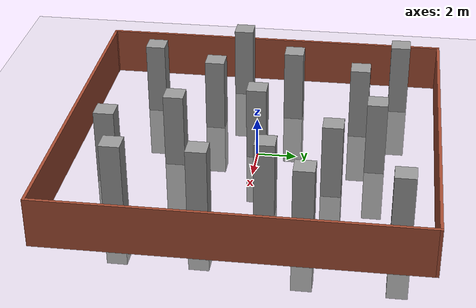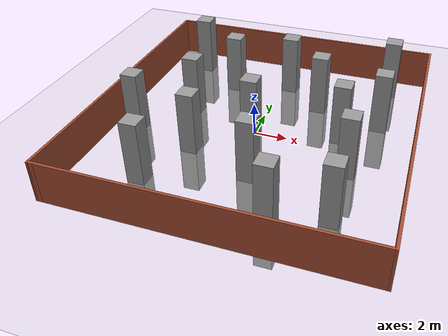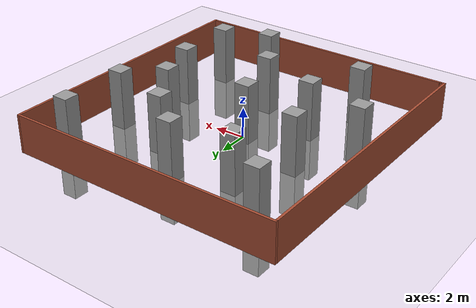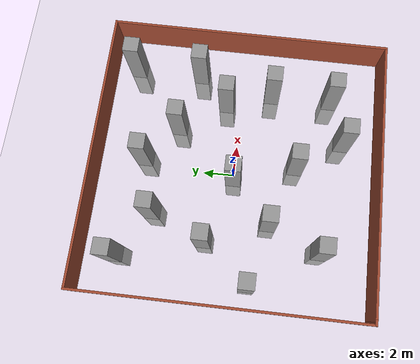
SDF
<sdf version="1.7">
 <world name="default">
  <light name="sun" type="directional">
   <pose>0 0 10 0 -0 0</pose>
   <diffuse>0.8 0.8 0.8 1</diffuse>
   <specular>0.2 0.2 0.2 1</specular>
   <attenuation>
    <range>1000</range>
    <constant>0.9</constant>
    <linear>0.01</linear>
    <quadratic>0.001</quadratic>
   </attenuation>
   <direction>-0.5 0.1 -0.9</direction>
   <spot><inner_angle>0</inner_angle><outer_angle>0</outer_angle><falloff>0</falloff></spot>
  </light>
  <model name="ground_plane">
   <static>1</static>
   <link name="link">
    <collision name="collision">
     <geometry><plane><normal>0 0 1</normal><size>100 100</size></plane></geometry>
     <surface>
      <contact><collide_bitmask>65535</collide_bitmask></contact>
      <friction><ode><mu>100</mu><mu2>50</mu2></ode></friction>
     </surface>
    </collision>
    <visual name="visual">
     <cast_shadows>0</cast_shadows>
     <geometry><plane><normal>0 0 1</normal><size>100 100</size></plane></geometry>
     <material>
      <script><uri>file://media/materials/scripts/gazebo.material</uri><name>Gazebo/Grey</name></script>
     </material>
    </visual>
   </link>
  </model>
  <gravity>0 0 -9.8</gravity>
  <magnetic_field>6e-06 2.3e-05 -4.2e-05</magnetic_field>
  <atmosphere type="adiabatic"/>
  <physics type="ode">
   <max_step_size>0.001</max_step_size>
   <real_time_factor>1</real_time_factor>
   <real_time_update_rate>1000</real_time_update_rate>
  </physics>
  <scene><ambient>0.4 0.4 0.4 1</ambient><background>0.7 0.7 0.7 1</background><shadows>1</shadows></scene>
  <spherical_coordinates>
   <surface_model>EARTH_WGS84</surface_model>
   <latitude_deg>0</latitude_deg>
   <longitude_deg>0</longitude_deg>
   <elevation>0</elevation>
   <heading_deg>0</heading_deg>
  </spherical_coordinates>
  <model name="wall">
   <pose>0.367597 -0.094932 0 0 -0 0</pose>
   <link name="Wall_0">
    <collision name="Wall_0_Collision">
     <geometry><box><size>17.75 0.15 2.5</size></box></geometry>
     <pose>0 0 1.25 0 -0 0</pose>
    </collision>
    <visual name="Wall_0_Visual">
     <pose>0 0 1.25 0 -0 0</pose>
     <geometry><box><size>17.75 0.15 2.5</size></box></geometry>
     <material>
      <script><uri>file://media/materials/scripts/gazebo.material</uri><name>Gazebo/Bricks</name></script>
      <ambient>1 1 1 1</ambient>
     </material>
     <meta><layer>0</layer></meta>
    </visual>
    <pose>0.125 -9.175 0 0 -0 0</pose>
   </link>
   <link name="Wall_1">
    <collision name="Wall_1_Collision">
     <geometry><box><size>18.5 0.15 2.5</size></box></geometry>
     <pose>0 0 1.25 0 -0 0</pose>
    </collision>
    <visual name="Wall_1_Visual">
     <pose>0 0 1.25 0 -0 0</pose>
     <geometry><box><size>18.5 0.15 2.5</size></box></geometry>
     <material>
      <script><uri>file://media/materials/scripts/gazebo.material</uri><name>Gazebo/Bricks</name></script>
      <ambient>1 1 1 1</ambient>
     </material>
     <meta><layer>0</layer></meta>
    </visual>
    <pose>8.925 -0 0 0 -0 1.5708</pose>
   </link>
   <link name="Wall_4">
    <collision name="Wall_4_Collision">
     <geometry><box><size>18 0.15 2.5</size></box></geometry>
     <pose>0 0 1.25 0 -0 0</pose>
    </collision>
    <visual name="Wall_4_Visual">
     <pose>0 0 1.25 0 -0 0</pose>
     <geometry><box><size>18 0.15 2.5</size></box></geometry>
     <material>
      <script><uri>file://media/materials/scripts/gazebo.material</uri><name>Gazebo/Bricks</name></script>
      <ambient>1 1 1 1</ambient>
     </material>
     <meta><layer>0</layer></meta>
    </visual>
    <pose>0 9.175 0 0 -0 3.14159</pose>
   </link>
   <link name="Wall_5">
    <collision name="Wall_5_Collision">
     <geometry><box><size>18.5 0.15 2.5</size></box></geometry>
     <pose>0 0 1.25 0 -0 0</pose>
    </collision>
    <visual name="Wall_5_Visual">
     <pose>0 0 1.25 0 -0 0</pose>
     <geometry><box><size>18.5 0.15 2.5</size></box></geometry>
     <material>
      <script><uri>file://media/materials/scripts/gazebo.material</uri><name>Gazebo/Bricks</name></script>
      <ambient>1 1 1 1</ambient>
     </material>
     <meta><layer>0</layer></meta>
    </visual>
    <pose>-8.925 -0 0 0 -0 -1.5708</pose>
   </link>
   <link name="Wall_7">
    <collision name="Wall_7_Collision">
     <geometry><box><size>0.4 0.15 2.5</size></box></geometry>
     <pose>0 0 1.25 0 -0 0</pose>
    </collision>
    <visual name="Wall_7_Visual">
     <pose>0 0 1.25 0 -0 0</pose>
     <geometry><box><size>0.4 0.15 2.5</size></box></geometry>
     <material>
      <script><uri>file://media/materials/scripts/gazebo.material</uri><name>Gazebo/Bricks</name></script>
      <ambient>1 1 1 1</ambient>
     </material>
     <meta><layer>0</layer></meta>
    </visual>
    <pose>-8.8 -9.175 0 0 -0 0</pose>
   </link>
   <static>1</static>
  </model>
  <model name="obstacle_zh">
   <link name="link_0">
    <inertial>
     <mass>6.57686</mass>
     <inertia><ixx>24.255</ixx><ixy>0</ixy><ixz>0</ixz><iyy>24.255</iyy><iyz>0</iyz><izz>1.09614</izz></inertia>
    </inertial>
    <pose>-0.213065 -0.025285 0.5 0 -0 0</pose>
    <visual name="visual">
     <geometry><box><size>1 1 6.57687</size></box></geometry>
     <material>
      <lighting>1</lighting>
      <script><uri>file://media/materials/scripts/gazebo.material</uri><name>Gazebo/Grey</name></script>
      <shader type="pixel"/>
     </material>
    </visual>
    <collision name="collision">
     <geometry><box><size>1 1 6.57687</size></box></geometry>
     <surface>
      <friction>
       <ode><mu>1</mu><mu2>1</mu2><fdir1>0 0 0</fdir1><slip1>0</slip1><slip2>0</slip2></ode>
       <torsional>
        <coefficient>1</coefficient>
        <patch_radius>0</patch_radius>
        <surface_radius>0</surface_radius>
        <use_patch_radius>1</use_patch_radius>
        <ode><slip>0</slip></ode>
       </torsional>
      </friction>
      <bounce><restitution_coefficient>0</restitution_coefficient><threshold>1e+06</threshold></bounce>
      <contact>
       <collide_without_contact>0</collide_without_contact>
       <collide_without_contact_bitmask>1</collide_without_contact_bitmask>
       <collide_bitmask>1</collide_bitmask>
       <ode>
        <soft_cfm>0</soft_cfm>
        <soft_erp>0.2</soft_erp>
        <kp>1e+13</kp>
        <kd>1</kd>
        <max_vel>0.01</max_vel>
        <min_depth>0</min_depth>
       </ode>
       <bullet>
        <split_impulse>1</split_impulse>
        <split_impulse_penetration_threshold>-0.01</split_impulse_penetration_threshold>
        <soft_cfm>0</soft_cfm>
        <soft_erp>0.2</soft_erp>
        <kp>1e+13</kp>
        <kd>1</kd>
       </bullet>
      </contact>
     </surface>
    </collision>
   </link>
   <link name="link_0_clone">
    <inertial>
     <mass>6.57686</mass>
     <inertia><ixx>24.255</ixx><ixy>0</ixy><ixz>0</ixz><iyy>24.255</iyy><iyz>0</iyz><izz>1.09614</izz></inertia>
    </inertial>
    <pose>6 -2 0.5 0 -0 0</pose>
    <visual name="visual">
     <geometry><box><size>1 1 6.57687</size></box></geometry>
     <material>
      <lighting>1</lighting>
      <script><uri>file://media/materials/scripts/gazebo.material</uri><name>Gazebo/Grey</name></script>
      <shader type="pixel"/>
     </material>
    </visual>
    <collision name="collision">
     <geometry><box><size>1 1 6.57687</size></box></geometry>
     <surface>
      <friction>
       <ode><mu>1</mu><mu2>1</mu2><fdir1>0 0 0</fdir1><slip1>0</slip1><slip2>0</slip2></ode>
       <torsional>
        <coefficient>1</coefficient>
        <patch_radius>0</patch_radius>
        <surface_radius>0</surface_radius>
        <use_patch_radius>1</use_patch_radius>
        <ode><slip>0</slip></ode>
       </torsional>
      </friction>
      <bounce><restitution_coefficient>0</restitution_coefficient><threshold>1e+06</threshold></bounce>
      <contact>
       <collide_without_contact>0</collide_without_contact>
       <collide_without_contact_bitmask>1</collide_without_contact_bitmask>
       <collide_bitmask>1</collide_bitmask>
       <ode>
        <soft_cfm>0</soft_cfm>
        <soft_erp>0.2</soft_erp>
        <kp>1e+13</kp>
        <kd>1</kd>
        <max_vel>0.01</max_vel>
        <min_depth>0</min_depth>
       </ode>
       <bullet>
        <split_impulse>1</split_impulse>
        <split_impulse_penetration_threshold>-0.01</split_impulse_penetration_threshold>
        <soft_cfm>0</soft_cfm>
        <soft_erp>0.2</soft_erp>
        <kp>1e+13</kp>
        <kd>1</kd>
       </bullet>
      </contact>
     </surface>
    </collision>
   </link>
   <link name="link_0_clone_0">
    <inertial>
     <mass>6.57686</mass>
     <inertia><ixx>24.255</ixx><ixy>0</ixy><ixz>0</ixz><iyy>24.255</iyy><iyz>0</iyz><izz>1.09614</izz></inertia>
    </inertial>
    <pose>-4.48342 -6 0.5 0 -0 0</pose>
    <visual name="visual">
     <geometry><box><size>1 1 6.57687</size></box></geometry>
     <material>
      <lighting>1</lighting>
      <script><uri>file://media/materials/scripts/gazebo.material</uri><name>Gazebo/Grey</name></script>
      <shader type="pixel"/>
     </material>
    </visual>
    <collision name="collision">
     <geometry><box><size>1 1 6.57687</size></box></geometry>
     <surface>
      <friction>
       <ode><mu>1</mu><mu2>1</mu2><fdir1>0 0 0</fdir1><slip1>0</slip1><slip2>0</slip2></ode>
       <torsional>
        <coefficient>1</coefficient>
        <patch_radius>0</patch_radius>
        <surface_radius>0</surface_radius>
        <use_patch_radius>1</use_patch_radius>
        <ode><slip>0</slip></ode>
       </torsional>
      </friction>
      <bounce><restitution_coefficient>0</restitution_coefficient><threshold>1e+06</threshold></bounce>
      <contact>
       <collide_without_contact>0</collide_without_contact>
       <collide_without_contact_bitmask>1</collide_without_contact_bitmask>
       <collide_bitmask>1</collide_bitmask>
       <ode>
        <soft_cfm>0</soft_cfm>
        <soft_erp>0.2</soft_erp>
        <kp>1e+13</kp>
        <kd>1</kd>
        <max_vel>0.01</max_vel>
        <min_depth>0</min_depth>
       </ode>
       <bullet>
        <split_impulse>1</split_impulse>
        <split_impulse_penetration_threshold>-0.01</split_impulse_penetration_threshold>
        <soft_cfm>0</soft_cfm>
        <soft_erp>0.2</soft_erp>
        <kp>1e+13</kp>
        <kd>1</kd>
       </bullet>
      </contact>
     </surface>
    </collision>
   </link>
   <link name="link_0_clone_1">
    <inertial>
     <mass>6.57686</mass>
     <inertia><ixx>24.255</ixx><ixy>0</ixy><ixz>0</ixz><iyy>24.255</iyy><iyz>0</iyz><izz>1.09614</izz></inertia>
    </inertial>
    <pose>-3 5 0.5 0 -0 0</pose>
    <visual name="visual">
     <geometry><box><size>1 1 6.57687</size></box></geometry>
     <material>
      <lighting>1</lighting>
      <script><uri>file://media/materials/scripts/gazebo.material</uri><name>Gazebo/Grey</name></script>
      <shader type="pixel"/>
     </material>
    </visual>
    <collision name="collision">
     <geometry><box><size>1 1 6.57687</size></box></geometry>
     <surface>
      <friction>
       <ode><mu>1</mu><mu2>1</mu2><fdir1>0 0 0</fdir1><slip1>0</slip1><slip2>0</slip2></ode>
       <torsional>
        <coefficient>1</coefficient>
        <patch_radius>0</patch_radius>
        <surface_radius>0</surface_radius>
        <use_patch_radius>1</use_patch_radius>
        <ode><slip>0</slip></ode>
       </torsional>
      </friction>
      <bounce><restitution_coefficient>0</restitution_coefficient><threshold>1e+06</threshold></bounce>
      <contact>
       <collide_without_contact>0</collide_without_contact>
       <collide_without_contact_bitmask>1</collide_without_contact_bitmask>
       <collide_bitmask>1</collide_bitmask>
       <ode>
        <soft_cfm>0</soft_cfm>
        <soft_erp>0.2</soft_erp>
        <kp>1e+13</kp>
        <kd>1</kd>
        <max_vel>0.01</max_vel>
        <min_depth>0</min_depth>
       </ode>
       <bullet>
        <split_impulse>1</split_impulse>
        <split_impulse_penetration_threshold>-0.01</split_impulse_penetration_threshold>
        <soft_cfm>0</soft_cfm>
        <soft_erp>0.2</soft_erp>
        <kp>1e+13</kp>
        <kd>1</kd>
       </bullet>
      </contact>
     </surface>
    </collision>
   </link>
   <link name="link_0_clone_10">
    <inertial>
     <mass>6.57686</mass>
     <inertia><ixx>24.255</ixx><ixy>0</ixy><ixz>0</ixz><iyy>24.255</iyy><iyz>0</iyz><izz>1.09614</izz></inertia>
    </inertial>
    <pose>3 -7 0.5 0 -0 0</pose>
    <visual name="visual">
     <geometry><box><size>1 1 6.57687</size></box></geometry>
     <material>
      <lighting>1</lighting>
      <script><uri>file://media/materials/scripts/gazebo.material</uri><name>Gazebo/Grey</name></script>
      <shader type="pixel"/>
     </material>
    </visual>
    <collision name="collision">
     <geometry><box><size>1 1 6.57687</size></box></geometry>
     <surface>
      <friction>
       <ode><mu>1</mu><mu2>1</mu2><fdir1>0 0 0</fdir1><slip1>0</slip1><slip2>0</slip2></ode>
       <torsional>
        <coefficient>1</coefficient>
        <patch_radius>0</patch_radius>
        <surface_radius>0</surface_radius>
        <use_patch_radius>1</use_patch_radius>
        <ode><slip>0</slip></ode>
       </torsional>
      </friction>
      <bounce><restitution_coefficient>0</restitution_coefficient><threshold>1e+06</threshold></bounce>
      <contact>
       <collide_without_contact>0</collide_without_contact>
       <collide_without_contact_bitmask>1</collide_without_contact_bitmask>
       <collide_bitmask>1</collide_bitmask>
       <ode>
        <soft_cfm>0</soft_cfm>
        <soft_erp>0.2</soft_erp>
        <kp>1e+13</kp>
        <kd>1</kd>
        <max_vel>0.01</max_vel>
        <min_depth>0</min_depth>
       </ode>
       <bullet>
        <split_impulse>1</split_impulse>
        <split_impulse_penetration_threshold>-0.01</split_impulse_penetration_threshold>
        <soft_cfm>0</soft_cfm>
        <soft_erp>0.2</soft_erp>
        <kp>1e+13</kp>
        <kd>1</kd>
       </bullet>
      </contact>
     </surface>
    </collision>
   </link>
   <link name="link_0_clone_11">
    <inertial>
     <mass>6.57686</mass>
     <inertia><ixx>24.255</ixx><ixy>0</ixy><ixz>0</ixz><iyy>24.255</iyy><iyz>0</iyz><izz>1.09614</izz></inertia>
    </inertial>
    <pose>-7 -1.57666 0.5 0 -0 0</pose>
    <visual name="visual">
     <geometry><box><size>1 1 6.57687</size></box></geometry>
     <material>
      <lighting>1</lighting>
      <script><uri>file://media/materials/scripts/gazebo.material</uri><name>Gazebo/Grey</name></script>
      <shader type="pixel"/>
     </material>
    </visual>
    <collision name="collision">
     <geometry><box><size>1 1 6.57687</size></box></geometry>
     <surface>
      <friction>
       <ode><mu>1</mu><mu2>1</mu2><fdir1>0 0 0</fdir1><slip1>0</slip1><slip2>0</slip2></ode>
       <torsional>
        <coefficient>1</coefficient>
        <patch_radius>0</patch_radius>
        <surface_radius>0</surface_radius>
        <use_patch_radius>1</use_patch_radius>
        <ode><slip>0</slip></ode>
       </torsional>
      </friction>
      <bounce><restitution_coefficient>0</restitution_coefficient><threshold>1e+06</threshold></bounce>
      <contact>
       <collide_without_contact>0</collide_without_contact>
       <collide_without_contact_bitmask>1</collide_without_contact_bitmask>
       <collide_bitmask>1</collide_bitmask>
       <ode>
        <soft_cfm>0</soft_cfm>
        <soft_erp>0.2</soft_erp>
        <kp>1e+13</kp>
        <kd>1</kd>
        <max_vel>0.01</max_vel>
        <min_depth>0</min_depth>
       </ode>
       <bullet>
        <split_impulse>1</split_impulse>
        <split_impulse_penetration_threshold>-0.01</split_impulse_penetration_threshold>
        <soft_cfm>0</soft_cfm>
        <soft_erp>0.2</soft_erp>
        <kp>1e+13</kp>
        <kd>1</kd>
       </bullet>
      </contact>
     </surface>
    </collision>
   </link>
   <link name="link_0_clone_12">
    <inertial>
     <mass>6.57686</mass>
     <inertia><ixx>24.255</ixx><ixy>0</ixy><ixz>0</ixz><iyy>24.255</iyy><iyz>0</iyz><izz>1.09614</izz></inertia>
    </inertial>
    <pose>-6 7 0.5 0 -0 0</pose>
    <visual name="visual">
     <geometry><box><size>1 1 6.57687</size></box></geometry>
     <material>
      <lighting>1</lighting>
      <script><uri>file://media/materials/scripts/gazebo.material</uri><name>Gazebo/Grey</name></script>
      <shader type="pixel"/>
     </material>
    </visual>
    <collision name="collision">
     <geometry><box><size>1 1 6.57687</size></box></geometry>
     <surface>
      <friction>
       <ode><mu>1</mu><mu2>1</mu2><fdir1>0 0 0</fdir1><slip1>0</slip1><slip2>0</slip2></ode>
       <torsional>
        <coefficient>1</coefficient>
        <patch_radius>0</patch_radius>
        <surface_radius>0</surface_radius>
        <use_patch_radius>1</use_patch_radius>
        <ode><slip>0</slip></ode>
       </torsional>
      </friction>
      <bounce><restitution_coefficient>0</restitution_coefficient><threshold>1e+06</threshold></bounce>
      <contact>
       <collide_without_contact>0</collide_without_contact>
       <collide_without_contact_bitmask>1</collide_without_contact_bitmask>
       <collide_bitmask>1</collide_bitmask>
       <ode>
        <soft_cfm>0</soft_cfm>
        <soft_erp>0.2</soft_erp>
        <kp>1e+13</kp>
        <kd>1</kd>
        <max_vel>0.01</max_vel>
        <min_depth>0</min_depth>
       </ode>
       <bullet>
        <split_impulse>1</split_impulse>
        <split_impulse_penetration_threshold>-0.01</split_impulse_penetration_threshold>
        <soft_cfm>0</soft_cfm>
        <soft_erp>0.2</soft_erp>
        <kp>1e+13</kp>
        <kd>1</kd>
       </bullet>
      </contact>
     </surface>
    </collision>
   </link>
   <link name="link_0_clone_13">
    <inertial>
     <mass>6.57686</mass>
     <inertia><ixx>24.255</ixx><ixy>0</ixy><ixz>0</ixz><iyy>24.255</iyy><iyz>0</iyz><izz>1.09614</izz></inertia>
    </inertial>
    <pose>7 7.44984 0.5 0 -0 0</pose>
    <visual name="visual">
     <geometry><box><size>1 1 6.57687</size></box></geometry>
     <material>
      <lighting>1</lighting>
      <script><uri>file://media/materials/scripts/gazebo.material</uri><name>Gazebo/Grey</name></script>
      <shader type="pixel"/>
     </material>
    </visual>
    <collision name="collision">
     <geometry><box><size>1 1 6.57687</size></box></geometry>
     <surface>
      <friction>
       <ode><mu>1</mu><mu2>1</mu2><fdir1>0 0 0</fdir1><slip1>0</slip1><slip2>0</slip2></ode>
       <torsional>
        <coefficient>1</coefficient>
        <patch_radius>0</patch_radius>
        <surface_radius>0</surface_radius>
        <use_patch_radius>1</use_patch_radius>
        <ode><slip>0</slip></ode>
       </torsional>
      </friction>
      <bounce><restitution_coefficient>0</restitution_coefficient><threshold>1e+06</threshold></bounce>
      <contact>
       <collide_without_contact>0</collide_without_contact>
       <collide_without_contact_bitmask>1</collide_without_contact_bitmask>
       <collide_bitmask>1</collide_bitmask>
       <ode>
        <soft_cfm>0</soft_cfm>
        <soft_erp>0.2</soft_erp>
        <kp>1e+13</kp>
        <kd>1</kd>
        <max_vel>0.01</max_vel>
        <min_depth>0</min_depth>
       </ode>
       <bullet>
        <split_impulse>1</split_impulse>
        <split_impulse_penetration_threshold>-0.01</split_impulse_penetration_threshold>
        <soft_cfm>0</soft_cfm>
        <soft_erp>0.2</soft_erp>
        <kp>1e+13</kp>
        <kd>1</kd>
       </bullet>
      </contact>
     </surface>
    </collision>
   </link>
   <link name="link_0_clone_2">
    <inertial>
     <mass>6.57686</mass>
     <inertia><ixx>24.255</ixx><ixy>0</ixy><ixz>0</ixz><iyy>24.255</iyy><iyz>0</iyz><izz>1.09614</izz></inertia>
    </inertial>
    <pose>3 4 0.5 0 -0 0</pose>
    <visual name="visual">
     <geometry><box><size>1 1 6.57687</size></box></geometry>
     <material>
      <lighting>1</lighting>
      <script><uri>file://media/materials/scripts/gazebo.material</uri><name>Gazebo/Grey</name></script>
      <shader type="pixel"/>
     </material>
    </visual>
    <collision name="collision">
     <geometry><box><size>1 1 6.57687</size></box></geometry>
     <surface>
      <friction>
       <ode><mu>1</mu><mu2>1</mu2><fdir1>0 0 0</fdir1><slip1>0</slip1><slip2>0</slip2></ode>
       <torsional>
        <coefficient>1</coefficient>
        <patch_radius>0</patch_radius>
        <surface_radius>0</surface_radius>
        <use_patch_radius>1</use_patch_radius>
        <ode><slip>0</slip></ode>
       </torsional>
      </friction>
      <bounce><restitution_coefficient>0</restitution_coefficient><threshold>1e+06</threshold></bounce>
      <contact>
       <collide_without_contact>0</collide_without_contact>
       <collide_without_contact_bitmask>1</collide_without_contact_bitmask>
       <collide_bitmask>1</collide_bitmask>
       <ode>
        <soft_cfm>0</soft_cfm>
        <soft_erp>0.2</soft_erp>
        <kp>1e+13</kp>
        <kd>1</kd>
        <max_vel>0.01</max_vel>
        <min_depth>0</min_depth>
       </ode>
       <bullet>
        <split_impulse>1</split_impulse>
        <split_impulse_penetration_threshold>-0.01</split_impulse_penetration_threshold>
        <soft_cfm>0</soft_cfm>
        <soft_erp>0.2</soft_erp>
        <kp>1e+13</kp>
        <kd>1</kd>
       </bullet>
      </contact>
     </surface>
    </collision>
   </link>
   <link name="link_0_clone_3">
    <inertial>
     <mass>6.57686</mass>
     <inertia><ixx>24.255</ixx><ixy>0</ixy><ixz>0</ixz><iyy>24.255</iyy><iyz>0</iyz><izz>1.09614</izz></inertia>
    </inertial>
    <pose>1 -4 0.5 0 -0 0</pose>
    <visual name="visual">
     <geometry><box><size>1 1 6.57687</size></box></geometry>
     <material>
      <lighting>1</lighting>
      <script><uri>file://media/materials/scripts/gazebo.material</uri><name>Gazebo/Grey</name></script>
      <shader type="pixel"/>
     </material>
    </visual>
    <collision name="collision">
     <geometry><box><size>1 1 6.57687</size></box></geometry>
     <surface>
      <friction>
       <ode><mu>1</mu><mu2>1</mu2><fdir1>0 0 0</fdir1><slip1>0</slip1><slip2>0</slip2></ode>
       <torsional>
        <coefficient>1</coefficient>
        <patch_radius>0</patch_radius>
        <surface_radius>0</surface_radius>
        <use_patch_radius>1</use_patch_radius>
        <ode><slip>0</slip></ode>
       </torsional>
      </friction>
      <bounce><restitution_coefficient>0</restitution_coefficient><threshold>1e+06</threshold></bounce>
      <contact>
       <collide_without_contact>0</collide_without_contact>
       <collide_without_contact_bitmask>1</collide_without_contact_bitmask>
       <collide_bitmask>1</collide_bitmask>
       <ode>
        <soft_cfm>0</soft_cfm>
        <soft_erp>0.2</soft_erp>
        <kp>1e+13</kp>
        <kd>1</kd>
        <max_vel>0.01</max_vel>
        <min_depth>0</min_depth>
       </ode>
       <bullet>
        <split_impulse>1</split_impulse>
        <split_impulse_penetration_threshold>-0.01</split_impulse_penetration_threshold>
        <soft_cfm>0</soft_cfm>
        <soft_erp>0.2</soft_erp>
        <kp>1e+13</kp>
        <kd>1</kd>
       </bullet>
      </contact>
     </surface>
    </collision>
   </link>
   <link name="link_0_clone_4">
    <inertial>
     <mass>6.57686</mass>
     <inertia><ixx>24.255</ixx><ixy>0</ixy><ixz>0</ixz><iyy>24.255</iyy><iyz>0</iyz><izz>1.09614</izz></inertia>
    </inertial>
    <pose>6 -6 0.5 0 -0 0</pose>
    <visual name="visual">
     <geometry><box><size>1 1 6.57687</size></box></geometry>
     <material>
      <lighting>1</lighting>
      <script><uri>file://media/materials/scripts/gazebo.material</uri><name>Gazebo/Grey</name></script>
      <shader type="pixel"/>
     </material>
    </visual>
    <collision name="collision">
     <geometry><box><size>1 1 6.57687</size></box></geometry>
     <surface>
      <friction>
       <ode><mu>1</mu><mu2>1</mu2><fdir1>0 0 0</fdir1><slip1>0</slip1><slip2>0</slip2></ode>
       <torsional>
        <coefficient>1</coefficient>
        <patch_radius>0</patch_radius>
        <surface_radius>0</surface_radius>
        <use_patch_radius>1</use_patch_radius>
        <ode><slip>0</slip></ode>
       </torsional>
      </friction>
      <bounce><restitution_coefficient>0</restitution_coefficient><threshold>1e+06</threshold></bounce>
      <contact>
       <collide_without_contact>0</collide_without_contact>
       <collide_without_contact_bitmask>1</collide_without_contact_bitmask>
       <collide_bitmask>1</collide_bitmask>
       <ode>
        <soft_cfm>0</soft_cfm>
        <soft_erp>0.2</soft_erp>
        <kp>1e+13</kp>
        <kd>1</kd>
        <max_vel>0.01</max_vel>
        <min_depth>0</min_depth>
       </ode>
       <bullet>
        <split_impulse>1</split_impulse>
        <split_impulse_penetration_threshold>-0.01</split_impulse_penetration_threshold>
        <soft_cfm>0</soft_cfm>
        <soft_erp>0.2</soft_erp>
        <kp>1e+13</kp>
        <kd>1</kd>
       </bullet>
      </contact>
     </surface>
    </collision>
   </link>
   <link name="link_0_clone_5">
    <inertial>
     <mass>6.57686</mass>
     <inertia><ixx>24.255</ixx><ixy>0</ixy><ixz>0</ixz><iyy>24.255</iyy><iyz>0</iyz><izz>1.09614</izz></inertia>
    </inertial>
    <pose>-3 -2.57004 0.5 0 -0 0</pose>
    <visual name="visual">
     <geometry><box><size>1 1 6.57687</size></box></geometry>
     <material>
      <lighting>1</lighting>
      <script><uri>file://media/materials/scripts/gazebo.material</uri><name>Gazebo/Grey</name></script>
      <shader type="pixel"/>
     </material>
    </visual>
    <collision name="collision">
     <geometry><box><size>1 1 6.57687</size></box></geometry>
     <surface>
      <friction>
       <ode><mu>1</mu><mu2>1</mu2><fdir1>0 0 0</fdir1><slip1>0</slip1><slip2>0</slip2></ode>
       <torsional>
        <coefficient>1</coefficient>
        <patch_radius>0</patch_radius>
        <surface_radius>0</surface_radius>
        <use_patch_radius>1</use_patch_radius>
        <ode><slip>0</slip></ode>
       </torsional>
      </friction>
      <bounce><restitution_coefficient>0</restitution_coefficient><threshold>1e+06</threshold></bounce>
      <contact>
       <collide_without_contact>0</collide_without_contact>
       <collide_without_contact_bitmask>1</collide_without_contact_bitmask>
       <collide_bitmask>1</collide_bitmask>
       <ode>
        <soft_cfm>0</soft_cfm>
        <soft_erp>0.2</soft_erp>
        <kp>1e+13</kp>
        <kd>1</kd>
        <max_vel>0.01</max_vel>
        <min_depth>0</min_depth>
       </ode>
       <bullet>
        <split_impulse>1</split_impulse>
        <split_impulse_penetration_threshold>-0.01</split_impulse_penetration_threshold>
        <soft_cfm>0</soft_cfm>
        <soft_erp>0.2</soft_erp>
        <kp>1e+13</kp>
        <kd>1</kd>
       </bullet>
      </contact>
     </surface>
    </collision>
   </link>
   <link name="link_0_clone_6">
    <inertial>
     <mass>6.57686</mass>
     <inertia><ixx>24.255</ixx><ixy>0</ixy><ixz>0</ixz><iyy>24.255</iyy><iyz>0</iyz><izz>1.09614</izz></inertia>
    </inertial>
    <pose>0.564052 6 0.5 0 -0 0</pose>
    <visual name="visual">
     <geometry><box><size>1 1 6.57687</size></box></geometry>
     <material>
      <lighting>1</lighting>
      <script><uri>file://media/materials/scripts/gazebo.material</uri><name>Gazebo/Grey</name></script>
      <shader type="pixel"/>
     </material>
    </visual>
    <collision name="collision">
     <geometry><box><size>1 1 6.57687</size></box></geometry>
     <surface>
      <friction>
       <ode><mu>1</mu><mu2>1</mu2><fdir1>0 0 0</fdir1><slip1>0</slip1><slip2>0</slip2></ode>
       <torsional>
        <coefficient>1</coefficient>
        <patch_radius>0</patch_radius>
        <surface_radius>0</surface_radius>
        <use_patch_radius>1</use_patch_radius>
        <ode><slip>0</slip></ode>
       </torsional>
      </friction>
      <bounce><restitution_coefficient>0</restitution_coefficient><threshold>1e+06</threshold></bounce>
      <contact>
       <collide_without_contact>0</collide_without_contact>
       <collide_without_contact_bitmask>1</collide_without_contact_bitmask>
       <collide_bitmask>1</collide_bitmask>
       <ode>
        <soft_cfm>0</soft_cfm>
        <soft_erp>0.2</soft_erp>
        <kp>1e+13</kp>
        <kd>1</kd>
        <max_vel>0.01</max_vel>
        <min_depth>0</min_depth>
       </ode>
       <bullet>
        <split_impulse>1</split_impulse>
        <split_impulse_penetration_threshold>-0.01</split_impulse_penetration_threshold>
        <soft_cfm>0</soft_cfm>
        <soft_erp>0.2</soft_erp>
        <kp>1e+13</kp>
        <kd>1</kd>
       </bullet>
      </contact>
     </surface>
    </collision>
   </link>
   <link name="link_0_clone_7">
    <inertial>
     <mass>6.57686</mass>
     <inertia><ixx>24.255</ixx><ixy>0</ixy><ixz>0</ixz><iyy>24.255</iyy><iyz>0</iyz><izz>1.09614</izz></inertia>
    </inertial>
    <pose>7 3 0.5 0 -0 0</pose>
    <visual name="visual">
     <geometry><box><size>1 1 6.57687</size></box></geometry>
     <material>
      <lighting>1</lighting>
      <script><uri>file://media/materials/scripts/gazebo.material</uri><name>Gazebo/Grey</name></script>
      <shader type="pixel"/>
     </material>
    </visual>
    <collision name="collision">
     <geometry><box><size>1 1 6.57687</size></box></geometry>
     <surface>
      <friction>
       <ode><mu>1</mu><mu2>1</mu2><fdir1>0 0 0</fdir1><slip1>0</slip1><slip2>0</slip2></ode>
       <torsional>
        <coefficient>1</coefficient>
        <patch_radius>0</patch_radius>
        <surface_radius>0</surface_radius>
        <use_patch_radius>1</use_patch_radius>
        <ode><slip>0</slip></ode>
       </torsional>
      </friction>
      <bounce><restitution_coefficient>0</restitution_coefficient><threshold>1e+06</threshold></bounce>
      <contact>
       <collide_without_contact>0</collide_without_contact>
       <collide_without_contact_bitmask>1</collide_without_contact_bitmask>
       <collide_bitmask>1</collide_bitmask>
       <ode>
        <soft_cfm>0</soft_cfm>
        <soft_erp>0.2</soft_erp>
        <kp>1e+13</kp>
        <kd>1</kd>
        <max_vel>0.01</max_vel>
        <min_depth>0</min_depth>
       </ode>
       <bullet>
        <split_impulse>1</split_impulse>
        <split_impulse_penetration_threshold>-0.01</split_impulse_penetration_threshold>
        <soft_cfm>0</soft_cfm>
        <soft_erp>0.2</soft_erp>
        <kp>1e+13</kp>
        <kd>1</kd>
       </bullet>
      </contact>
     </surface>
    </collision>
   </link>
   <link name="link_0_clone_8">
    <inertial>
     <mass>6.57686</mass>
     <inertia><ixx>24.255</ixx><ixy>0</ixy><ixz>0</ixz><iyy>24.255</iyy><iyz>0</iyz><izz>1.09614</izz></inertia>
    </inertial>
    <pose>5 0.999999 0.5 0 -0 0</pose>
    <visual name="visual">
     <geometry><box><size>1 1 6.57687</size></box></geometry>
     <material>
      <lighting>1</lighting>
      <script><uri>file://media/materials/scripts/gazebo.material</uri><name>Gazebo/Grey</name></script>
      <shader type="pixel"/>
     </material>
    </visual>
    <collision name="collision">
     <geometry><box><size>1 1 6.57687</size></box></geometry>
     <surface>
      <friction>
       <ode><mu>1</mu><mu2>1</mu2><fdir1>0 0 0</fdir1><slip1>0</slip1><slip2>0</slip2></ode>
       <torsional>
        <coefficient>1</coefficient>
        <patch_radius>0</patch_radius>
        <surface_radius>0</surface_radius>
        <use_patch_radius>1</use_patch_radius>
        <ode><slip>0</slip></ode>
       </torsional>
      </friction>
      <bounce><restitution_coefficient>0</restitution_coefficient><threshold>1e+06</threshold></bounce>
      <contact>
       <collide_without_contact>0</collide_without_contact>
       <collide_without_contact_bitmask>1</collide_without_contact_bitmask>
       <collide_bitmask>1</collide_bitmask>
       <ode>
        <soft_cfm>0</soft_cfm>
        <soft_erp>0.2</soft_erp>
        <kp>1e+13</kp>
        <kd>1</kd>
        <max_vel>0.01</max_vel>
        <min_depth>0</min_depth>
       </ode>
       <bullet>
        <split_impulse>1</split_impulse>
        <split_impulse_penetration_threshold>-0.01</split_impulse_penetration_threshold>
        <soft_cfm>0</soft_cfm>
        <soft_erp>0.2</soft_erp>
        <kp>1e+13</kp>
        <kd>1</kd>
       </bullet>
      </contact>
     </surface>
    </collision>
   </link>
   <link name="link_0_clone_9">
    <inertial>
     <mass>6.57686</mass>
     <inertia><ixx>24.255</ixx><ixy>0</ixy><ixz>0</ixz><iyy>24.255</iyy><iyz>0</iyz><izz>1.09614</izz></inertia>
    </inertial>
    <pose>-4.51691 1.42889 0.5 0 -0 0</pose>
    <visual name="visual">
     <geometry><box><size>1 1 6.57687</size></box></geometry>
     <material>
      <lighting>1</lighting>
      <script><uri>file://media/materials/scripts/gazebo.material</uri><name>Gazebo/Grey</name></script>
      <shader type="pixel"/>
     </material>
    </visual>
    <collision name="collision">
     <geometry><box><size>1 1 6.57687</size></box></geometry>
     <surface>
      <friction>
       <ode><mu>1</mu><mu2>1</mu2><fdir1>0 0 0</fdir1><slip1>0</slip1><slip2>0</slip2></ode>
       <torsional>
        <coefficient>1</coefficient>
        <patch_radius>0</patch_radius>
        <surface_radius>0</surface_radius>
        <use_patch_radius>1</use_patch_radius>
        <ode><slip>0</slip></ode>
       </torsional>
      </friction>
      <bounce><restitution_coefficient>0</restitution_coefficient><threshold>1e+06</threshold></bounce>
      <contact>
       <collide_without_contact>0</collide_without_contact>
       <collide_without_contact_bitmask>1</collide_without_contact_bitmask>
       <collide_bitmask>1</collide_bitmask>
       <ode>
        <soft_cfm>0</soft_cfm>
        <soft_erp>0.2</soft_erp>
        <kp>1e+13</kp>
        <kd>1</kd>
        <max_vel>0.01</max_vel>
        <min_depth>0</min_depth>
       </ode>
       <bullet>
        <split_impulse>1</split_impulse>
        <split_impulse_penetration_threshold>-0.01</split_impulse_penetration_threshold>
        <soft_cfm>0</soft_cfm>
        <soft_erp>0.2</soft_erp>
        <kp>1e+13</kp>
        <kd>1</kd>
       </bullet>
      </contact>
     </surface>
    </collision>
   </link>
   <static>0</static>
   <pose>-4e-06 1e-06 0 0 -0 0</pose>
  </model>
 </world>
</sdf>
